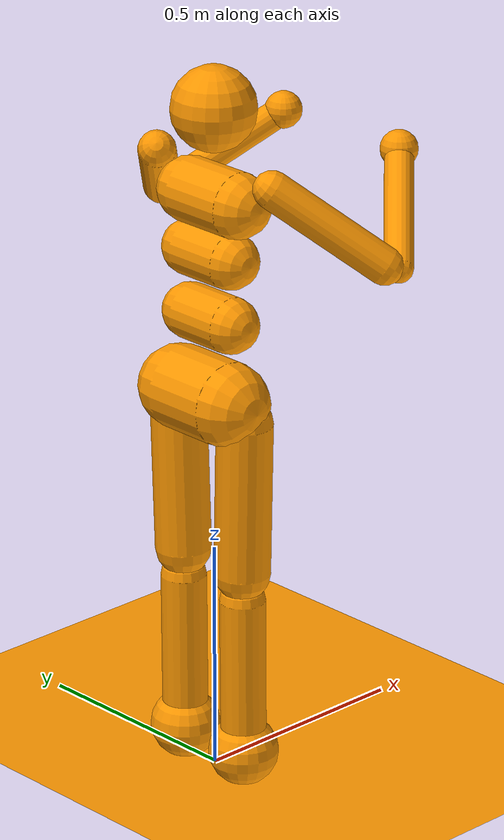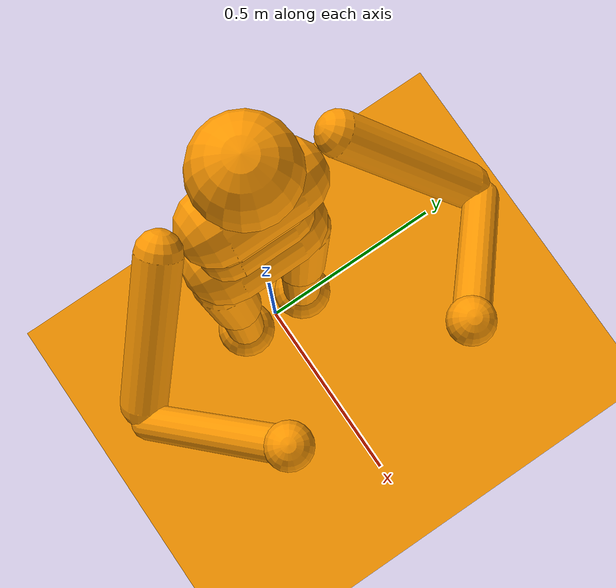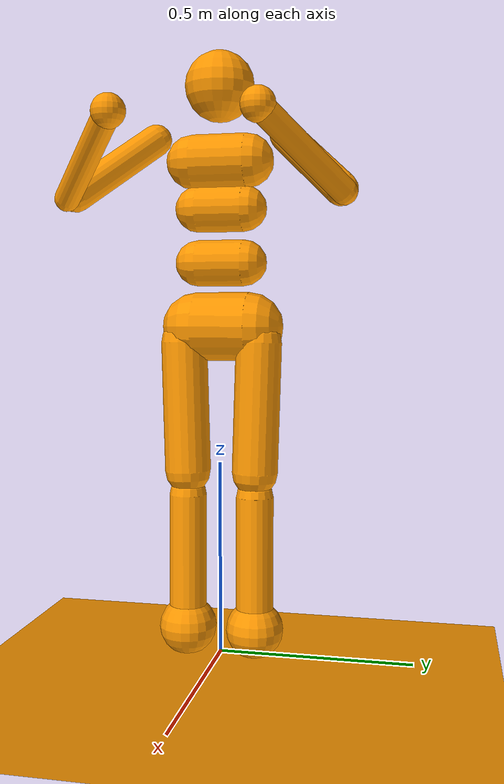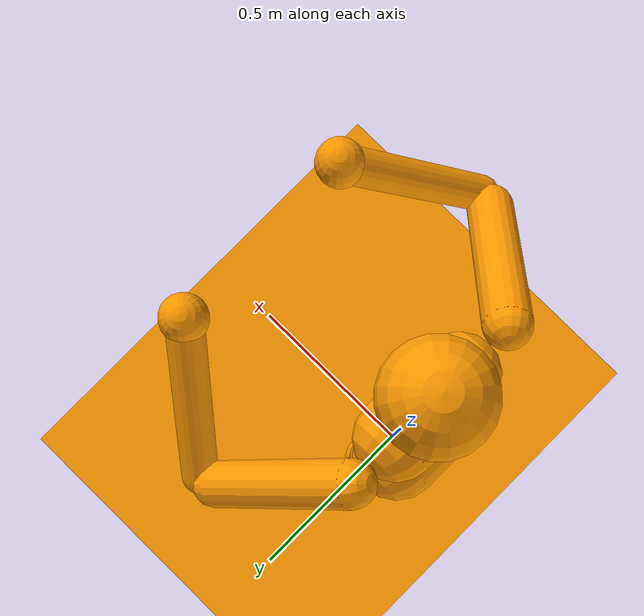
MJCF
<mujoco model="humanoid">
    <compiler angle="degree" inertiafromgeom="true"/>
    <default>
        <joint armature="10" damping="1" limited="true"/>
        <geom condim="6" rgba="1 0.6 0 1"/>
        <motor ctrllimited="true" ctrlrange="-1.0 1.0"/>
        <site size="0.1" type="sphere" rgba="0 0 1 0"/>
    </default>
    <option integrator="RK4" timestep="0.003">
    </option>
    <size njmax="3000" nconmax="3000"/>

    <worldbody>
        <geom name="floor" size="5 5 0.1" type="plane" condim="6"/>
        <body name="robot" pos="0 0 1.28">
            <site name="robot" rgba="1 0 0 .0"/>
            <camera name="vision" pos=".125 0 .2" xyaxes="0 -1 0 .4 0 1" fovy="100"/>
            <joint armature="0" axis="1 0 0" damping="0" limited="false" name="rootx" pos="0 0 0" stiffness="0" type="slide"/>
            <joint armature="10" axis="0 0 1" damping="0" limited="false" name="rootz" pos="0 0 0" stiffness="5" type="hinge"/>
            <joint armature="0" axis="0 1 0" damping="0" limited="false" name="rooty" pos="0 0 0" stiffness="0" type="slide"/>
            <geom fromto="0 -.07 0 0 .07 0" name="robot1" size="0.07" type="capsule"/>
            <geom name="head" pos="0 0 .19" size=".09" type="sphere" user="258"/>
            <geom fromto="-.01 -.06 -.12 -.01 .06 -.12" name="uwaist" size="0.06" type="capsule"/>
            <body name="lwaist" pos="-.01 0 -0.260" quat="1.000 0 -0.002 0">
                <geom fromto="0 -.06 0 0 .06 0" name="lwaist" size="0.06" type="capsule"/>
                <joint armature="0.02" axis="0 0 1" damping="5" name="abdomen_z" pos="0 0 0.065" limited="false" range="-45 45" stiffness="1" type="hinge"/>
                <joint armature="0.02" axis="0 1 0" damping="5" name="abdomen_y" pos="0 0 0.065" range="-75 30" stiffness="10" type="hinge"/>
                <body name="pelvis" pos="0 0 -0.165" quat="1.000 0 -0.002 0">
                    <joint armature="0.02" axis="1 0 0" damping="5" name="abdomen_x" pos="0 0 0.1" range="-35 35" stiffness="10" type="hinge"/>
                    <geom fromto="-.02 -.07 0 -.02 .07 0" name="butt" size="0.09" type="capsule"/>
                    <body name="right_thigh" pos="0 -0.1 -0.04">
                        <joint armature="0.01" axis="1 0 0" damping="5" name="right_hip_x" pos="0 0 0" range="-25 5" stiffness="10" type="hinge"/>
                        <joint armature="0.01" axis="0 0 1" damping="5" name="right_hip_z" pos="0 0 0" range="-60 35" stiffness="10" type="hinge"/>
                        <joint armature="0.01" axis="0 1 0" damping="5" name="right_hip_y" pos="0 0 0" range="-110 20" stiffness="20" type="hinge"/>
                        <geom fromto="0 0 0 0 0.01 -.34" name="right_thigh1" size="0.06" type="capsule"/>
                        <body name="right_shin" pos="0 0.01 -0.403">
                            <joint armature="0.0060" axis="0 -1 0" name="right_knee" pos="0 0 .02" range="-160 -2" type="hinge"/>
                            <geom fromto="0 0 0 0 0 -.3" name="right_shin1" size="0.049" type="capsule"/>
                            <body name="right_foot" pos="0 0 -0.45">
                                <geom name="right_foot" pos="0 0 0.1" size="0.075" type="sphere" user="0"/>
                                <site name="right_foot" pos="0 0 0.1"/>
                            </body>
                        </body>
                    </body>
                    <body name="left_thigh" pos="0 0.1 -0.04">
                        <joint armature="0.01" axis="-1 0 0" damping="5" name="left_hip_x" pos="0 0 0" range="-25 5" stiffness="10" type="hinge"/>
                        <joint armature="0.01" axis="0 0 -1" damping="5" name="left_hip_z" pos="0 0 0" range="-60 35" stiffness="10" type="hinge"/>
                        <joint armature="0.01" axis="0 1 0" damping="5" name="left_hip_y" pos="0 0 0" range="-110 20" stiffness="20" type="hinge"/>
                        <geom fromto="0 0 0 0 -0.01 -.34" name="left_thigh1" size="0.06" type="capsule"/>
                        <body name="left_shin" pos="0 -0.01 -0.403">
                            <joint armature="0.0060" axis="0 -1 0" name="left_knee" pos="0 0 .02" range="-160 -2" stiffness="1" type="hinge"/>
                            <geom fromto="0 0 0 0 0 -.3" name="left_shin1" size="0.049" type="capsule"/>
                            <body name="left_foot" pos="0 0 -0.45">
                                <geom name="left_foot" type="sphere" size="0.075" pos="0 0 0.1" user="0" />
                                <site name="left_foot" pos="0 0 0.1"/>
                            </body>
                        </body>
                    </body>
                </body>
            </body>
            <body name="right_upper_arm" pos="0 -0.17 0.06">
                <joint armature="0.0068" axis="2 1 1" name="right_shoulder1" pos="0 0 0" range="-85 60" stiffness="1" type="hinge"/>
                <joint armature="0.0051" axis="0 -1 1" name="right_shoulder2" pos="0 0 0" range="-85 60" stiffness="1" type="hinge"/>
                <geom fromto="0 0 0 .16 -.16 -.16" name="right_uarm1" size="0.04 0.16" type="capsule"/>
                <body name="right_lower_arm" pos=".18 -.18 -.18">
                    <joint armature="0.0028" axis="0 -1 1" name="right_elbow" pos="0 0 0" range="-90 50" stiffness="0" type="hinge"/>
                    <geom fromto="0.01 0.01 0.01 .17 .17 .17" name="right_larm" size="0.031" type="capsule"/>
                    <geom name="right_hand" pos=".18 .18 .18" size="0.04" type="sphere"/>
                    <camera pos="0 0 0"/>
                </body>
            </body>
            <body name="left_upper_arm" pos="0 0.17 0.06">
                <joint armature="0.0068" axis="2 -1 1" name="left_shoulder1" pos="0 0 0" range="-60 85" stiffness="1" type="hinge"/>
                <joint armature="0.0051" axis="0 1 1" name="left_shoulder2" pos="0 0 0" range="-60 85" stiffness="1" type="hinge"/>
                <geom fromto="0 0 0 .16 .16 -.16" name="left_uarm1" size="0.04 0.16" type="capsule"/>
                <body name="left_lower_arm" pos=".18 .18 -.18">
                    <joint armature="0.0028" axis="0 -1 -1" name="left_elbow" pos="0 0 0" range="-90 50" stiffness="0" type="hinge"/>
                    <geom fromto="0.01 -0.01 0.01 .17 -.17 .17" name="left_larm" size="0.031" type="capsule"/>
                    <geom name="left_hand" pos=".18 -.18 .18" size="0.04" type="sphere"/>
                </body>
            </body>
        </body>
    </worldbody>
    <tendon>
        <fixed name="left_hipknee">
            <joint coef="-1" joint="left_hip_y"/>
            <joint coef="1" joint="left_knee"/>
        </fixed>
        <fixed name="right_hipknee">
            <joint coef="-1" joint="right_hip_y"/>
            <joint coef="1" joint="right_knee"/>
        </fixed>
    </tendon>
    <sensor>
        <touch site="right_foot" name="touch_right_foot"/>
        <touch site="left_foot" name="touch_left_foot"/>

        <jointpos joint="right_hip_x" name="jointpos_right_hip_x"/>
        <jointpos joint="right_hip_z" name="jointpos_right_hip_z"/>
        <jointpos joint="right_hip_y" name="jointpos_right_hip_y"/>
        <jointpos joint="right_knee" name="jointpos_right_knee"/>

        <jointpos joint="left_hip_x" name="jointpos_left_hip_x"/>
        <jointpos joint="left_hip_z" name="jointpos_left_hip_z"/>
        <jointpos joint="left_hip_y" name="jointpos_left_hip_y"/>
        <jointpos joint="left_knee" name="jointpos_left_knee"/>

        <jointvel joint="right_hip_x" name="jointvel_right_hip_x"/>
        <jointvel joint="right_hip_z" name="jointvel_right_hip_z"/>
        <jointvel joint="right_hip_y" name="jointvel_right_hip_y"/>
        <jointvel joint="right_knee" name="jointvel_right_knee"/>

        <jointvel joint="left_hip_x" name="jointvel_left_hip_x"/>
        <jointvel joint="left_hip_z" name="jointvel_left_hip_z"/>
        <jointvel joint="left_hip_y" name="jointvel_left_hip_y"/>
        <jointvel joint="left_knee" name="jointvel_left_knee"/>

        <!-- Used for observation -->
        <accelerometer site="robot" name="accelerometer"/>
        <velocimeter site="robot" name="velocimeter"/>
        <gyro site="robot" name="gyro"/>
        <magnetometer site="robot" name="magnetometer"/>

        <!-- Used for intrinsic constraints -->
        <subtreecom body="robot" name="subtreecom"/>
        <subtreelinvel body="robot" name="subtreelinvel"/>
        <subtreeangmom body="robot" name="subtreeangmom"/>
    </sensor>
    <actuator>
        <motor gear="20" joint="right_hip_x" name="right_hip_x"/>
        <motor gear="20" joint="right_hip_z" name="right_hip_z"/>
        <motor gear="40" joint="right_hip_y" name="right_hip_y"/>
        <motor gear="15" joint="right_knee" name="right_knee"/>
        <motor gear="20" joint="left_hip_x" name="left_hip_x"/>
        <motor gear="20" joint="left_hip_z" name="left_hip_z"/>
        <motor gear="40" joint="left_hip_y" name="left_hip_y"/>
        <motor gear="15" joint="left_knee" name="left_knee"/>
    </actuator>
</mujoco>
